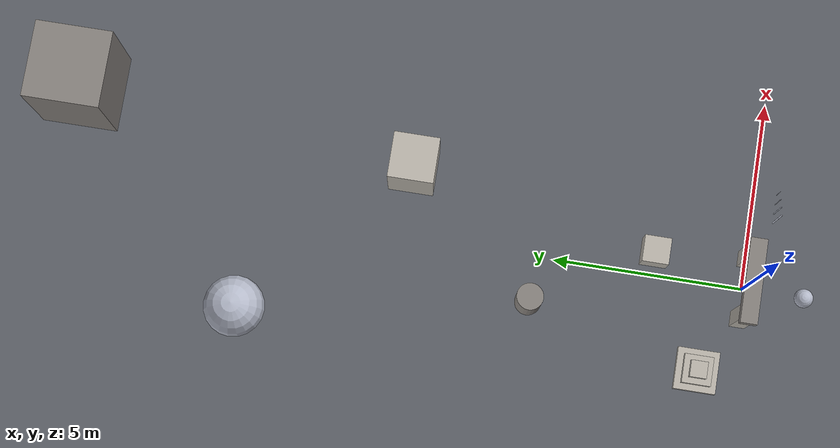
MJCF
<mujoco model="sunlight_shadow">
  <compiler angle="degree" autolimits="true"/>

  <visual>
    <headlight ambient="0.15 0.15 0.15" diffuse="0.15 0.15 0.15" specular="0.1 0.1 0.1"/>
    <quality shadowsize="4096" numslices="28" numstacks="16"/>
    <map znear="0.05" zfar="80" shadowclip="1.5" shadowscale="0.6"/>
  </visual>

  <asset>
    <texture name="grid" type="2d" builtin="checker" width="512" height="512"
             rgb1="0.30 0.31 0.33" rgb2="0.40 0.42 0.45"/>
    <material name="grid" texture="grid" texrepeat="1 1" texuniform="true"/>
    <material name="stone" rgba="0.72 0.70 0.66 1" specular="0.1" shininess="0.2"/>
    <material name="stone_dark" rgba="0.52 0.50 0.48 1" specular="0.1" shininess="0.2"/>
    <material name="metal" rgba="0.70 0.72 0.78 1" specular="0.8" shininess="0.9"/>
  </asset>

  <worldbody>

    <light name="sun" type="directional" pos="4 -6 5" dir="-0.45 0.65 -0.62"
           diffuse="0.85 0.82 0.75" specular="0.35 0.35 0.35" castshadow="true"/>

    <geom name="floor" type="plane" size="0 0 0.05" material="grid"/>

    <geom name="pillar_left" type="box" pos="-0.80 0 0.80" size="0.20 0.20 0.80" material="stone"/>
    <geom name="pillar_right" type="box" pos="0.80 0 0.80" size="0.20 0.20 0.80" material="stone"/>
    <geom name="lintel" type="box" pos="0 0 1.75" size="1.10 0.22 0.15" material="stone_dark"/>

    <geom name="step_0" type="box" pos="-2.30 0.90 0.10" size="0.55 0.55 0.10" material="stone"/>
    <geom name="step_1" type="box" pos="-2.30 0.90 0.30" size="0.38 0.38 0.10" material="stone"/>
    <geom name="step_2" type="box" pos="-2.30 0.90 0.50" size="0.22 0.22 0.10" material="stone"/>

    <geom name="pole_0" type="capsule" fromto="1.90 -0.60 0 1.90 -0.60 1.20" size="0.020"
          material="metal"/>
    <geom name="pole_1" type="capsule" fromto="2.15 -0.60 0 2.15 -0.60 1.00" size="0.015"
          material="metal"/>
    <geom name="pole_2" type="capsule" fromto="2.40 -0.60 0 2.40 -0.60 0.80" size="0.010"
          material="metal"/>
    <geom name="pole_3" type="capsule" fromto="2.65 -0.60 0 2.65 -0.60 0.60" size="0.007"
          material="metal"/>

    <geom name="depth_00" type="sphere" pos="0.00 -1.60 0.25" size="0.25" material="metal"/>
    <geom name="depth_01" type="box" pos="0.60 2.40 0.35" size="0.35 0.35 0.35" material="stone"/>
    <geom name="depth_02" type="cylinder" pos="-1.20 5.50 0.60" size="0.35 0.60"
          material="stone_dark"/>
    <geom name="depth_03" type="box" pos="1.80 9.00 0.90" size="0.60 0.60 0.90" material="stone"/>
    <geom name="depth_04" type="sphere" pos="-2.60 13.00 0.80" size="0.80" material="metal"/>
    <geom name="depth_05" type="box" pos="2.60 18.00 1.40" size="1.00 1.00 1.40"
          material="stone_dark"/>

    <camera name="shadow" pos="2.80 -4.60 2.30" xyaxes="0.85 0.53 0 -0.20 0.32 0.93"/>
    <camera name="shadow_low" pos="0.10 -5.20 0.55" xyaxes="1 0 0 0 0.10 0.99"/>
  </worldbody>
</mujoco>
